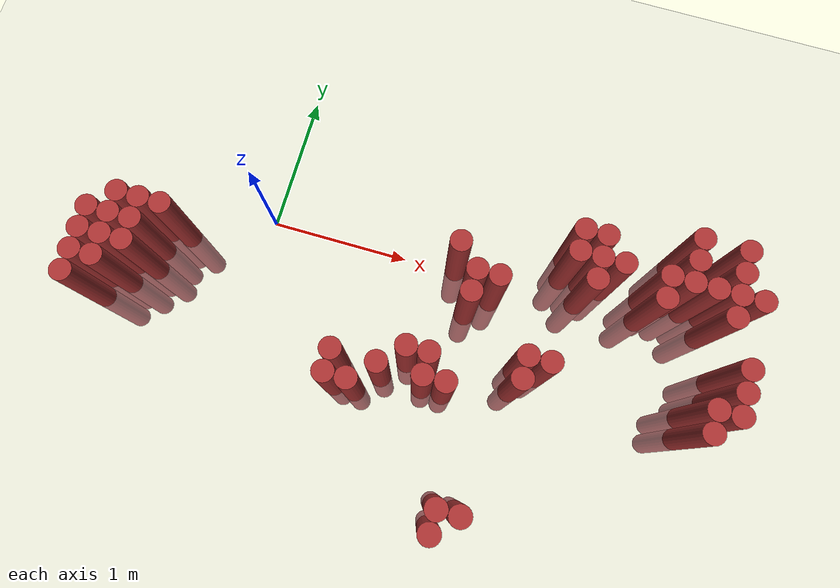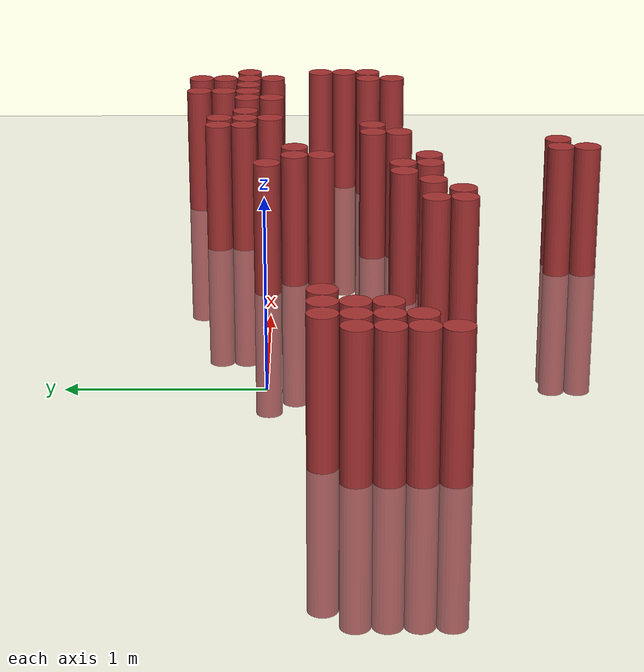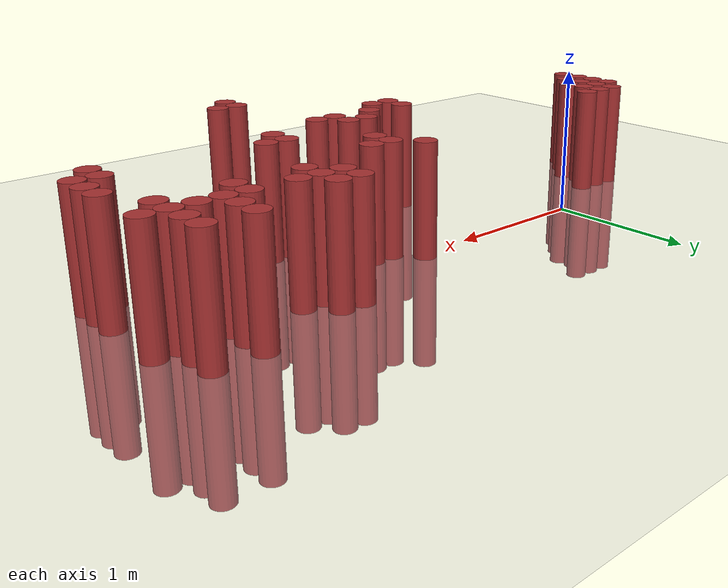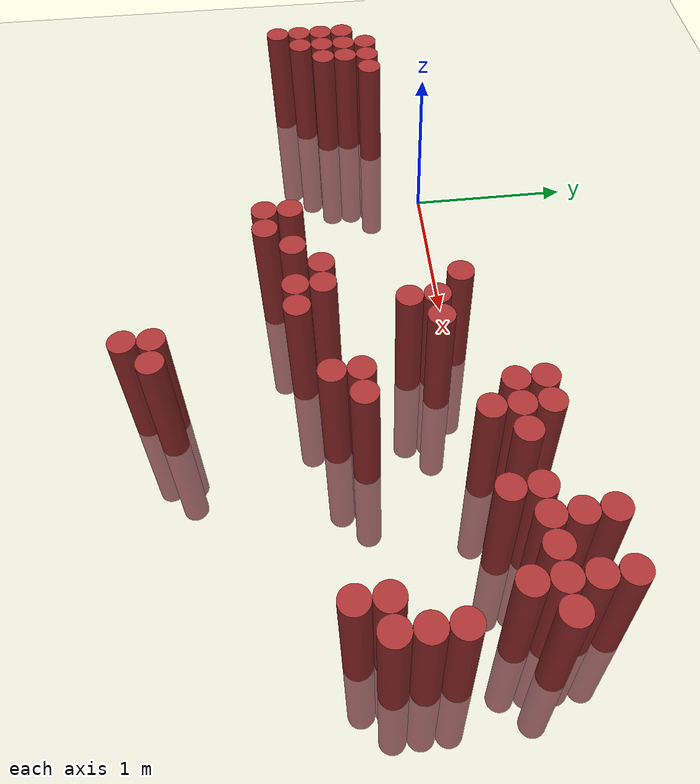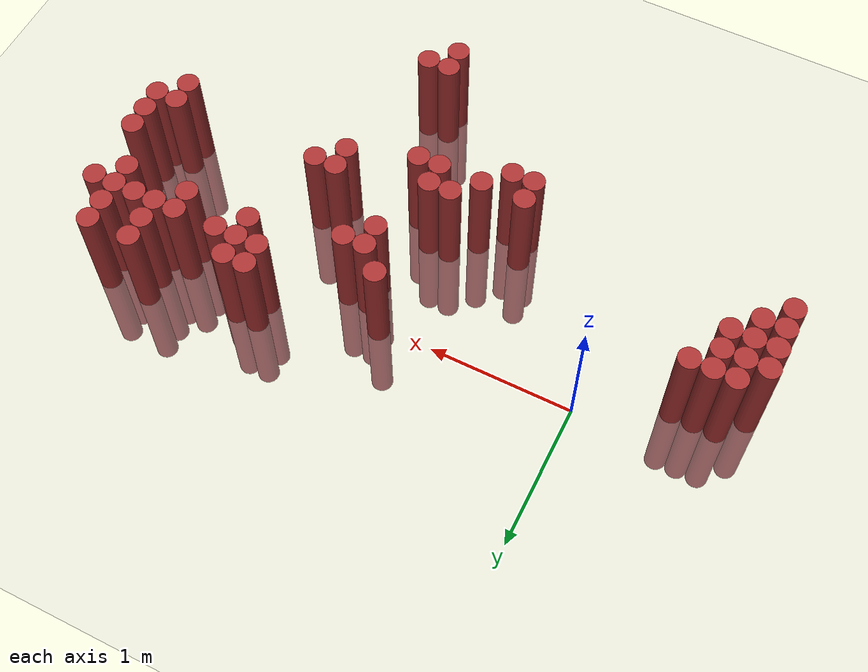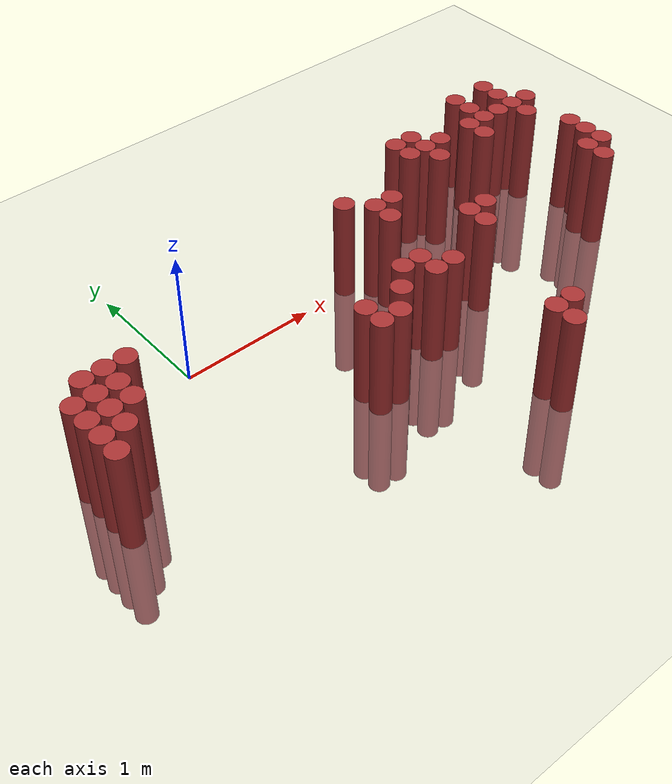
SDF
<sdf version="1.6">
 <world name="default">
  <model name="ground_plane">
   <static>1</static>
   <link name="link">
    <collision name="collision">
     <geometry><plane><normal>0 0 1</normal><size>100 100</size></plane></geometry>
     <surface><friction><ode><mu>100</mu><mu2>50</mu2></ode></friction></surface>
    </collision>
    <visual name="visual">
     <cast_shadows>0</cast_shadows>
     <geometry><plane><normal>0 0 1</normal><size>100 100</size></plane></geometry>
     <material>
      <script><uri>file://media/materials/scripts/gazebo.material</uri><name>Gazebo/Grey</name></script>
     </material>
    </visual>
   </link>
  </model>
  <model name="unit_cylinder_345">
   <static>1</static>
   <pose>-1.025000 -0.875000 0.000000 0.000000 0.000000 0.000000</pose>
   <link name="link">
    <inertial>
     <mass>1</mass>
     <inertia><ixx>0.145833</ixx><ixy>0</ixy><ixz>0</ixz><iyy>0.145833</iyy><iyz>0</iyz><izz>0.125</izz></inertia>
    </inertial>
    <collision name="collision">
     <geometry><cylinder><radius>0.075000</radius><length>1.5</length></cylinder></geometry>
    </collision>
    <visual name="visual">
     <geometry><cylinder><radius>0.075000</radius><length>1.5</length></cylinder></geometry>
     <material>
      <ambient>0.648000 0.192000 0.192000 1</ambient>
      <diffuse>0.648000 0.192000 0.192000 1</diffuse>
     </material>
     <material>
      <script><name>Gazebo/Grey</name><uri>file://media/materials/scripts/gazebo.material</uri></script>
     </material>
    </visual>
   </link>
  </model>
  <model name="unit_cylinder_346">
   <static>1</static>
   <pose>-1.025000 -0.725000 0.000000 0.000000 0.000000 0.000000</pose>
   <link name="link">
    <inertial>
     <mass>1</mass>
     <inertia><ixx>0.145833</ixx><ixy>0</ixy><ixz>0</ixz><iyy>0.145833</iyy><iyz>0</iyz><izz>0.125</izz></inertia>
    </inertial>
    <collision name="collision">
     <geometry><cylinder><radius>0.075000</radius><length>1.5</length></cylinder></geometry>
    </collision>
    <visual name="visual">
     <geometry><cylinder><radius>0.075000</radius><length>1.5</length></cylinder></geometry>
     <material>
      <ambient>0.648000 0.192000 0.192000 1</ambient>
      <diffuse>0.648000 0.192000 0.192000 1</diffuse>
     </material>
     <material>
      <script><name>Gazebo/Grey</name><uri>file://media/materials/scripts/gazebo.material</uri></script>
     </material>
    </visual>
   </link>
  </model>
  <model name="unit_cylinder_347">
   <static>1</static>
   <pose>-1.025000 -0.575000 0.000000 0.000000 0.000000 0.000000</pose>
   <link name="link">
    <inertial>
     <mass>1</mass>
     <inertia><ixx>0.145833</ixx><ixy>0</ixy><ixz>0</ixz><iyy>0.145833</iyy><iyz>0</iyz><izz>0.125</izz></inertia>
    </inertial>
    <collision name="collision">
     <geometry><cylinder><radius>0.075000</radius><length>1.5</length></cylinder></geometry>
    </collision>
    <visual name="visual">
     <geometry><cylinder><radius>0.075000</radius><length>1.5</length></cylinder></geometry>
     <material>
      <ambient>0.648000 0.192000 0.192000 1</ambient>
      <diffuse>0.648000 0.192000 0.192000 1</diffuse>
     </material>
     <material>
      <script><name>Gazebo/Grey</name><uri>file://media/materials/scripts/gazebo.material</uri></script>
     </material>
    </visual>
   </link>
  </model>
  <model name="unit_cylinder_348">
   <static>1</static>
   <pose>-1.025000 -0.425000 0.000000 0.000000 0.000000 0.000000</pose>
   <link name="link">
    <inertial>
     <mass>1</mass>
     <inertia><ixx>0.145833</ixx><ixy>0</ixy><ixz>0</ixz><iyy>0.145833</iyy><iyz>0</iyz><izz>0.125</izz></inertia>
    </inertial>
    <collision name="collision">
     <geometry><cylinder><radius>0.075000</radius><length>1.5</length></cylinder></geometry>
    </collision>
    <visual name="visual">
     <geometry><cylinder><radius>0.075000</radius><length>1.5</length></cylinder></geometry>
     <material>
      <ambient>0.648000 0.192000 0.192000 1</ambient>
      <diffuse>0.648000 0.192000 0.192000 1</diffuse>
     </material>
     <material>
      <script><name>Gazebo/Grey</name><uri>file://media/materials/scripts/gazebo.material</uri></script>
     </material>
    </visual>
   </link>
  </model>
  <model name="unit_cylinder_353">
   <static>1</static>
   <pose>-0.875000 -0.725000 0.000000 0.000000 0.000000 0.000000</pose>
   <link name="link">
    <inertial>
     <mass>1</mass>
     <inertia><ixx>0.145833</ixx><ixy>0</ixy><ixz>0</ixz><iyy>0.145833</iyy><iyz>0</iyz><izz>0.125</izz></inertia>
    </inertial>
    <collision name="collision">
     <geometry><cylinder><radius>0.075000</radius><length>1.5</length></cylinder></geometry>
    </collision>
    <visual name="visual">
     <geometry><cylinder><radius>0.075000</radius><length>1.5</length></cylinder></geometry>
     <material>
      <ambient>0.648000 0.192000 0.192000 1</ambient>
      <diffuse>0.648000 0.192000 0.192000 1</diffuse>
     </material>
     <material>
      <script><name>Gazebo/Grey</name><uri>file://media/materials/scripts/gazebo.material</uri></script>
     </material>
    </visual>
   </link>
  </model>
  <model name="unit_cylinder_354">
   <static>1</static>
   <pose>-0.875000 -0.575000 0.000000 0.000000 0.000000 0.000000</pose>
   <link name="link">
    <inertial>
     <mass>1</mass>
     <inertia><ixx>0.145833</ixx><ixy>0</ixy><ixz>0</ixz><iyy>0.145833</iyy><iyz>0</iyz><izz>0.125</izz></inertia>
    </inertial>
    <collision name="collision">
     <geometry><cylinder><radius>0.075000</radius><length>1.5</length></cylinder></geometry>
    </collision>
    <visual name="visual">
     <geometry><cylinder><radius>0.075000</radius><length>1.5</length></cylinder></geometry>
     <material>
      <ambient>0.648000 0.192000 0.192000 1</ambient>
      <diffuse>0.648000 0.192000 0.192000 1</diffuse>
     </material>
     <material>
      <script><name>Gazebo/Grey</name><uri>file://media/materials/scripts/gazebo.material</uri></script>
     </material>
    </visual>
   </link>
  </model>
  <model name="unit_cylinder_355">
   <static>1</static>
   <pose>-0.875000 -0.425000 0.000000 0.000000 0.000000 0.000000</pose>
   <link name="link">
    <inertial>
     <mass>1</mass>
     <inertia><ixx>0.145833</ixx><ixy>0</ixy><ixz>0</ixz><iyy>0.145833</iyy><iyz>0</iyz><izz>0.125</izz></inertia>
    </inertial>
    <collision name="collision">
     <geometry><cylinder><radius>0.075000</radius><length>1.5</length></cylinder></geometry>
    </collision>
    <visual name="visual">
     <geometry><cylinder><radius>0.075000</radius><length>1.5</length></cylinder></geometry>
     <material>
      <ambient>0.648000 0.192000 0.192000 1</ambient>
      <diffuse>0.648000 0.192000 0.192000 1</diffuse>
     </material>
     <material>
      <script><name>Gazebo/Grey</name><uri>file://media/materials/scripts/gazebo.material</uri></script>
     </material>
    </visual>
   </link>
  </model>
  <model name="unit_cylinder_356">
   <static>1</static>
   <pose>-0.875000 -0.275000 0.000000 0.000000 0.000000 0.000000</pose>
   <link name="link">
    <inertial>
     <mass>1</mass>
     <inertia><ixx>0.145833</ixx><ixy>0</ixy><ixz>0</ixz><iyy>0.145833</iyy><iyz>0</iyz><izz>0.125</izz></inertia>
    </inertial>
    <collision name="collision">
     <geometry><cylinder><radius>0.075000</radius><length>1.5</length></cylinder></geometry>
    </collision>
    <visual name="visual">
     <geometry><cylinder><radius>0.075000</radius><length>1.5</length></cylinder></geometry>
     <material>
      <ambient>0.648000 0.192000 0.192000 1</ambient>
      <diffuse>0.648000 0.192000 0.192000 1</diffuse>
     </material>
     <material>
      <script><name>Gazebo/Grey</name><uri>file://media/materials/scripts/gazebo.material</uri></script>
     </material>
    </visual>
   </link>
  </model>
  <model name="unit_cylinder_360">
   <static>1</static>
   <pose>-0.725000 -0.575000 0.000000 0.000000 0.000000 0.000000</pose>
   <link name="link">
    <inertial>
     <mass>1</mass>
     <inertia><ixx>0.145833</ixx><ixy>0</ixy><ixz>0</ixz><iyy>0.145833</iyy><iyz>0</iyz><izz>0.125</izz></inertia>
    </inertial>
    <collision name="collision">
     <geometry><cylinder><radius>0.075000</radius><length>1.5</length></cylinder></geometry>
    </collision>
    <visual name="visual">
     <geometry><cylinder><radius>0.075000</radius><length>1.5</length></cylinder></geometry>
     <material>
      <ambient>0.648000 0.192000 0.192000 1</ambient>
      <diffuse>0.648000 0.192000 0.192000 1</diffuse>
     </material>
     <material>
      <script><name>Gazebo/Grey</name><uri>file://media/materials/scripts/gazebo.material</uri></script>
     </material>
    </visual>
   </link>
  </model>
  <model name="unit_cylinder_361">
   <static>1</static>
   <pose>-0.725000 -0.425000 0.000000 0.000000 0.000000 0.000000</pose>
   <link name="link">
    <inertial>
     <mass>1</mass>
     <inertia><ixx>0.145833</ixx><ixy>0</ixy><ixz>0</ixz><iyy>0.145833</iyy><iyz>0</iyz><izz>0.125</izz></inertia>
    </inertial>
    <collision name="collision">
     <geometry><cylinder><radius>0.075000</radius><length>1.5</length></cylinder></geometry>
    </collision>
    <visual name="visual">
     <geometry><cylinder><radius>0.075000</radius><length>1.5</length></cylinder></geometry>
     <material>
      <ambient>0.648000 0.192000 0.192000 1</ambient>
      <diffuse>0.648000 0.192000 0.192000 1</diffuse>
     </material>
     <material>
      <script><name>Gazebo/Grey</name><uri>file://media/materials/scripts/gazebo.material</uri></script>
     </material>
    </visual>
   </link>
  </model>
  <model name="unit_cylinder_362">
   <static>1</static>
   <pose>-0.725000 -0.275000 0.000000 0.000000 0.000000 0.000000</pose>
   <link name="link">
    <inertial>
     <mass>1</mass>
     <inertia><ixx>0.145833</ixx><ixy>0</ixy><ixz>0</ixz><iyy>0.145833</iyy><iyz>0</iyz><izz>0.125</izz></inertia>
    </inertial>
    <collision name="collision">
     <geometry><cylinder><radius>0.075000</radius><length>1.5</length></cylinder></geometry>
    </collision>
    <visual name="visual">
     <geometry><cylinder><radius>0.075000</radius><length>1.5</length></cylinder></geometry>
     <material>
      <ambient>0.648000 0.192000 0.192000 1</ambient>
      <diffuse>0.648000 0.192000 0.192000 1</diffuse>
     </material>
     <material>
      <script><name>Gazebo/Grey</name><uri>file://media/materials/scripts/gazebo.material</uri></script>
     </material>
    </visual>
   </link>
  </model>
  <model name="unit_cylinder_365">
   <static>1</static>
   <pose>-0.575000 -0.275000 0.000000 0.000000 0.000000 0.000000</pose>
   <link name="link">
    <inertial>
     <mass>1</mass>
     <inertia><ixx>0.145833</ixx><ixy>0</ixy><ixz>0</ixz><iyy>0.145833</iyy><iyz>0</iyz><izz>0.125</izz></inertia>
    </inertial>
    <collision name="collision">
     <geometry><cylinder><radius>0.075000</radius><length>1.5</length></cylinder></geometry>
    </collision>
    <visual name="visual">
     <geometry><cylinder><radius>0.075000</radius><length>1.5</length></cylinder></geometry>
     <material>
      <ambient>0.648000 0.192000 0.192000 1</ambient>
      <diffuse>0.648000 0.192000 0.192000 1</diffuse>
     </material>
     <material>
      <script><name>Gazebo/Grey</name><uri>file://media/materials/scripts/gazebo.material</uri></script>
     </material>
    </visual>
   </link>
  </model>
  <model name="unit_cylinder_395">
   <static>1</static>
   <pose>0.775000 -1.025000 0.000000 0.000000 0.000000 0.000000</pose>
   <link name="link">
    <inertial>
     <mass>1</mass>
     <inertia><ixx>0.145833</ixx><ixy>0</ixy><ixz>0</ixz><iyy>0.145833</iyy><iyz>0</iyz><izz>0.125</izz></inertia>
    </inertial>
    <collision name="collision">
     <geometry><cylinder><radius>0.075000</radius><length>1.5</length></cylinder></geometry>
    </collision>
    <visual name="visual">
     <geometry><cylinder><radius>0.075000</radius><length>1.5</length></cylinder></geometry>
     <material>
      <ambient>0.648000 0.192000 0.192000 1</ambient>
      <diffuse>0.648000 0.192000 0.192000 1</diffuse>
     </material>
     <material>
      <script><name>Gazebo/Grey</name><uri>file://media/materials/scripts/gazebo.material</uri></script>
     </material>
    </visual>
   </link>
  </model>
  <model name="unit_cylinder_396">
   <static>1</static>
   <pose>0.775000 -0.875000 0.000000 0.000000 0.000000 0.000000</pose>
   <link name="link">
    <inertial>
     <mass>1</mass>
     <inertia><ixx>0.145833</ixx><ixy>0</ixy><ixz>0</ixz><iyy>0.145833</iyy><iyz>0</iyz><izz>0.125</izz></inertia>
    </inertial>
    <collision name="collision">
     <geometry><cylinder><radius>0.075000</radius><length>1.5</length></cylinder></geometry>
    </collision>
    <visual name="visual">
     <geometry><cylinder><radius>0.075000</radius><length>1.5</length></cylinder></geometry>
     <material>
      <ambient>0.648000 0.192000 0.192000 1</ambient>
      <diffuse>0.648000 0.192000 0.192000 1</diffuse>
     </material>
     <material>
      <script><name>Gazebo/Grey</name><uri>file://media/materials/scripts/gazebo.material</uri></script>
     </material>
    </visual>
   </link>
  </model>
  <model name="unit_cylinder_404">
   <static>1</static>
   <pose>0.925000 -1.025000 0.000000 0.000000 0.000000 0.000000</pose>
   <link name="link">
    <inertial>
     <mass>1</mass>
     <inertia><ixx>0.145833</ixx><ixy>0</ixy><ixz>0</ixz><iyy>0.145833</iyy><iyz>0</iyz><izz>0.125</izz></inertia>
    </inertial>
    <collision name="collision">
     <geometry><cylinder><radius>0.075000</radius><length>1.5</length></cylinder></geometry>
    </collision>
    <visual name="visual">
     <geometry><cylinder><radius>0.075000</radius><length>1.5</length></cylinder></geometry>
     <material>
      <ambient>0.648000 0.192000 0.192000 1</ambient>
      <diffuse>0.648000 0.192000 0.192000 1</diffuse>
     </material>
     <material>
      <script><name>Gazebo/Grey</name><uri>file://media/materials/scripts/gazebo.material</uri></script>
     </material>
    </visual>
   </link>
  </model>
  <model name="unit_cylinder_407">
   <static>1</static>
   <pose>1.075000 -0.875000 0.000000 0.000000 0.000000 0.000000</pose>
   <link name="link">
    <inertial>
     <mass>1</mass>
     <inertia><ixx>0.145833</ixx><ixy>0</ixy><ixz>0</ixz><iyy>0.145833</iyy><iyz>0</iyz><izz>0.125</izz></inertia>
    </inertial>
    <collision name="collision">
     <geometry><cylinder><radius>0.075000</radius><length>1.5</length></cylinder></geometry>
    </collision>
    <visual name="visual">
     <geometry><cylinder><radius>0.075000</radius><length>1.5</length></cylinder></geometry>
     <material>
      <ambient>0.648000 0.192000 0.192000 1</ambient>
      <diffuse>0.648000 0.192000 0.192000 1</diffuse>
     </material>
     <material>
      <script><name>Gazebo/Grey</name><uri>file://media/materials/scripts/gazebo.material</uri></script>
     </material>
    </visual>
   </link>
  </model>
  <model name="unit_cylinder_410">
   <static>1</static>
   <pose>1.225000 -0.725000 0.000000 0.000000 0.000000 0.000000</pose>
   <link name="link">
    <inertial>
     <mass>1</mass>
     <inertia><ixx>0.145833</ixx><ixy>0</ixy><ixz>0</ixz><iyy>0.145833</iyy><iyz>0</iyz><izz>0.125</izz></inertia>
    </inertial>
    <collision name="collision">
     <geometry><cylinder><radius>0.075000</radius><length>1.5</length></cylinder></geometry>
    </collision>
    <visual name="visual">
     <geometry><cylinder><radius>0.075000</radius><length>1.5</length></cylinder></geometry>
     <material>
      <ambient>0.648000 0.192000 0.192000 1</ambient>
      <diffuse>0.648000 0.192000 0.192000 1</diffuse>
     </material>
     <material>
      <script><name>Gazebo/Grey</name><uri>file://media/materials/scripts/gazebo.material</uri></script>
     </material>
    </visual>
   </link>
  </model>
  <model name="unit_cylinder_415">
   <static>1</static>
   <pose>1.375000 -0.875000 0.000000 0.000000 0.000000 0.000000</pose>
   <link name="link">
    <inertial>
     <mass>1</mass>
     <inertia><ixx>0.145833</ixx><ixy>0</ixy><ixz>0</ixz><iyy>0.145833</iyy><iyz>0</iyz><izz>0.125</izz></inertia>
    </inertial>
    <collision name="collision">
     <geometry><cylinder><radius>0.075000</radius><length>1.5</length></cylinder></geometry>
    </collision>
    <visual name="visual">
     <geometry><cylinder><radius>0.075000</radius><length>1.5</length></cylinder></geometry>
     <material>
      <ambient>0.648000 0.192000 0.192000 1</ambient>
      <diffuse>0.648000 0.192000 0.192000 1</diffuse>
     </material>
     <material>
      <script><name>Gazebo/Grey</name><uri>file://media/materials/scripts/gazebo.material</uri></script>
     </material>
    </visual>
   </link>
  </model>
  <model name="unit_cylinder_416">
   <static>1</static>
   <pose>1.375000 -0.725000 0.000000 0.000000 0.000000 0.000000</pose>
   <link name="link">
    <inertial>
     <mass>1</mass>
     <inertia><ixx>0.145833</ixx><ixy>0</ixy><ixz>0</ixz><iyy>0.145833</iyy><iyz>0</iyz><izz>0.125</izz></inertia>
    </inertial>
    <collision name="collision">
     <geometry><cylinder><radius>0.075000</radius><length>1.5</length></cylinder></geometry>
    </collision>
    <visual name="visual">
     <geometry><cylinder><radius>0.075000</radius><length>1.5</length></cylinder></geometry>
     <material>
      <ambient>0.648000 0.192000 0.192000 1</ambient>
      <diffuse>0.648000 0.192000 0.192000 1</diffuse>
     </material>
     <material>
      <script><name>Gazebo/Grey</name><uri>file://media/materials/scripts/gazebo.material</uri></script>
     </material>
    </visual>
   </link>
  </model>
  <model name="unit_cylinder_417">
   <static>1</static>
   <pose>1.375000 0.025000 0.000000 0.000000 0.000000 0.000000</pose>
   <link name="link">
    <inertial>
     <mass>1</mass>
     <inertia><ixx>0.145833</ixx><ixy>0</ixy><ixz>0</ixz><iyy>0.145833</iyy><iyz>0</iyz><izz>0.125</izz></inertia>
    </inertial>
    <collision name="collision">
     <geometry><cylinder><radius>0.075000</radius><length>1.5</length></cylinder></geometry>
    </collision>
    <visual name="visual">
     <geometry><cylinder><radius>0.075000</radius><length>1.5</length></cylinder></geometry>
     <material>
      <ambient>0.648000 0.192000 0.192000 1</ambient>
      <diffuse>0.648000 0.192000 0.192000 1</diffuse>
     </material>
     <material>
      <script><name>Gazebo/Grey</name><uri>file://media/materials/scripts/gazebo.material</uri></script>
     </material>
    </visual>
   </link>
  </model>
  <model name="unit_cylinder_420">
   <static>1</static>
   <pose>1.525000 -0.875000 0.000000 0.000000 0.000000 0.000000</pose>
   <link name="link">
    <inertial>
     <mass>1</mass>
     <inertia><ixx>0.145833</ixx><ixy>0</ixy><ixz>0</ixz><iyy>0.145833</iyy><iyz>0</iyz><izz>0.125</izz></inertia>
    </inertial>
    <collision name="collision">
     <geometry><cylinder><radius>0.075000</radius><length>1.5</length></cylinder></geometry>
    </collision>
    <visual name="visual">
     <geometry><cylinder><radius>0.075000</radius><length>1.5</length></cylinder></geometry>
     <material>
      <ambient>0.648000 0.192000 0.192000 1</ambient>
      <diffuse>0.648000 0.192000 0.192000 1</diffuse>
     </material>
     <material>
      <script><name>Gazebo/Grey</name><uri>file://media/materials/scripts/gazebo.material</uri></script>
     </material>
    </visual>
   </link>
  </model>
  <model name="unit_cylinder_421">
   <static>1</static>
   <pose>1.525000 -0.275000 0.000000 0.000000 0.000000 0.000000</pose>
   <link name="link">
    <inertial>
     <mass>1</mass>
     <inertia><ixx>0.145833</ixx><ixy>0</ixy><ixz>0</ixz><iyy>0.145833</iyy><iyz>0</iyz><izz>0.125</izz></inertia>
    </inertial>
    <collision name="collision">
     <geometry><cylinder><radius>0.075000</radius><length>1.5</length></cylinder></geometry>
    </collision>
    <visual name="visual">
     <geometry><cylinder><radius>0.075000</radius><length>1.5</length></cylinder></geometry>
     <material>
      <ambient>0.648000 0.192000 0.192000 1</ambient>
      <diffuse>0.648000 0.192000 0.192000 1</diffuse>
     </material>
     <material>
      <script><name>Gazebo/Grey</name><uri>file://media/materials/scripts/gazebo.material</uri></script>
     </material>
    </visual>
   </link>
  </model>
  <model name="unit_cylinder_422">
   <static>1</static>
   <pose>1.525000 -0.125000 0.000000 0.000000 0.000000 0.000000</pose>
   <link name="link">
    <inertial>
     <mass>1</mass>
     <inertia><ixx>0.145833</ixx><ixy>0</ixy><ixz>0</ixz><iyy>0.145833</iyy><iyz>0</iyz><izz>0.125</izz></inertia>
    </inertial>
    <collision name="collision">
     <geometry><cylinder><radius>0.075000</radius><length>1.5</length></cylinder></geometry>
    </collision>
    <visual name="visual">
     <geometry><cylinder><radius>0.075000</radius><length>1.5</length></cylinder></geometry>
     <material>
      <ambient>0.648000 0.192000 0.192000 1</ambient>
      <diffuse>0.648000 0.192000 0.192000 1</diffuse>
     </material>
     <material>
      <script><name>Gazebo/Grey</name><uri>file://media/materials/scripts/gazebo.material</uri></script>
     </material>
    </visual>
   </link>
  </model>
  <model name="unit_cylinder_423">
   <static>1</static>
   <pose>1.675000 -1.775000 0.000000 0.000000 0.000000 0.000000</pose>
   <link name="link">
    <inertial>
     <mass>1</mass>
     <inertia><ixx>0.145833</ixx><ixy>0</ixy><ixz>0</ixz><iyy>0.145833</iyy><iyz>0</iyz><izz>0.125</izz></inertia>
    </inertial>
    <collision name="collision">
     <geometry><cylinder><radius>0.075000</radius><length>1.5</length></cylinder></geometry>
    </collision>
    <visual name="visual">
     <geometry><cylinder><radius>0.075000</radius><length>1.5</length></cylinder></geometry>
     <material>
      <ambient>0.648000 0.192000 0.192000 1</ambient>
      <diffuse>0.648000 0.192000 0.192000 1</diffuse>
     </material>
     <material>
      <script><name>Gazebo/Grey</name><uri>file://media/materials/scripts/gazebo.material</uri></script>
     </material>
    </visual>
   </link>
  </model>
  <model name="unit_cylinder_424">
   <static>1</static>
   <pose>1.675000 -1.625000 0.000000 0.000000 0.000000 0.000000</pose>
   <link name="link">
    <inertial>
     <mass>1</mass>
     <inertia><ixx>0.145833</ixx><ixy>0</ixy><ixz>0</ixz><iyy>0.145833</iyy><iyz>0</iyz><izz>0.125</izz></inertia>
    </inertial>
    <collision name="collision">
     <geometry><cylinder><radius>0.075000</radius><length>1.5</length></cylinder></geometry>
    </collision>
    <visual name="visual">
     <geometry><cylinder><radius>0.075000</radius><length>1.5</length></cylinder></geometry>
     <material>
      <ambient>0.648000 0.192000 0.192000 1</ambient>
      <diffuse>0.648000 0.192000 0.192000 1</diffuse>
     </material>
     <material>
      <script><name>Gazebo/Grey</name><uri>file://media/materials/scripts/gazebo.material</uri></script>
     </material>
    </visual>
   </link>
  </model>
  <model name="unit_cylinder_425">
   <static>1</static>
   <pose>1.675000 -0.125000 0.000000 0.000000 0.000000 0.000000</pose>
   <link name="link">
    <inertial>
     <mass>1</mass>
     <inertia><ixx>0.145833</ixx><ixy>0</ixy><ixz>0</ixz><iyy>0.145833</iyy><iyz>0</iyz><izz>0.125</izz></inertia>
    </inertial>
    <collision name="collision">
     <geometry><cylinder><radius>0.075000</radius><length>1.5</length></cylinder></geometry>
    </collision>
    <visual name="visual">
     <geometry><cylinder><radius>0.075000</radius><length>1.5</length></cylinder></geometry>
     <material>
      <ambient>0.648000 0.192000 0.192000 1</ambient>
      <diffuse>0.648000 0.192000 0.192000 1</diffuse>
     </material>
     <material>
      <script><name>Gazebo/Grey</name><uri>file://media/materials/scripts/gazebo.material</uri></script>
     </material>
    </visual>
   </link>
  </model>
  <model name="unit_cylinder_426">
   <static>1</static>
   <pose>1.825000 -1.625000 0.000000 0.000000 0.000000 0.000000</pose>
   <link name="link">
    <inertial>
     <mass>1</mass>
     <inertia><ixx>0.145833</ixx><ixy>0</ixy><ixz>0</ixz><iyy>0.145833</iyy><iyz>0</iyz><izz>0.125</izz></inertia>
    </inertial>
    <collision name="collision">
     <geometry><cylinder><radius>0.075000</radius><length>1.5</length></cylinder></geometry>
    </collision>
    <visual name="visual">
     <geometry><cylinder><radius>0.075000</radius><length>1.5</length></cylinder></geometry>
     <material>
      <ambient>0.648000 0.192000 0.192000 1</ambient>
      <diffuse>0.648000 0.192000 0.192000 1</diffuse>
     </material>
     <material>
      <script><name>Gazebo/Grey</name><uri>file://media/materials/scripts/gazebo.material</uri></script>
     </material>
    </visual>
   </link>
  </model>
  <model name="unit_cylinder_427">
   <static>1</static>
   <pose>1.975000 -0.725000 0.000000 0.000000 0.000000 0.000000</pose>
   <link name="link">
    <inertial>
     <mass>1</mass>
     <inertia><ixx>0.145833</ixx><ixy>0</ixy><ixz>0</ixz><iyy>0.145833</iyy><iyz>0</iyz><izz>0.125</izz></inertia>
    </inertial>
    <collision name="collision">
     <geometry><cylinder><radius>0.075000</radius><length>1.5</length></cylinder></geometry>
    </collision>
    <visual name="visual">
     <geometry><cylinder><radius>0.075000</radius><length>1.5</length></cylinder></geometry>
     <material>
      <ambient>0.648000 0.192000 0.192000 1</ambient>
      <diffuse>0.648000 0.192000 0.192000 1</diffuse>
     </material>
     <material>
      <script><name>Gazebo/Grey</name><uri>file://media/materials/scripts/gazebo.material</uri></script>
     </material>
    </visual>
   </link>
  </model>
  <model name="unit_cylinder_428">
   <static>1</static>
   <pose>1.975000 -0.575000 0.000000 0.000000 0.000000 0.000000</pose>
   <link name="link">
    <inertial>
     <mass>1</mass>
     <inertia><ixx>0.145833</ixx><ixy>0</ixy><ixz>0</ixz><iyy>0.145833</iyy><iyz>0</iyz><izz>0.125</izz></inertia>
    </inertial>
    <collision name="collision">
     <geometry><cylinder><radius>0.075000</radius><length>1.5</length></cylinder></geometry>
    </collision>
    <visual name="visual">
     <geometry><cylinder><radius>0.075000</radius><length>1.5</length></cylinder></geometry>
     <material>
      <ambient>0.648000 0.192000 0.192000 1</ambient>
      <diffuse>0.648000 0.192000 0.192000 1</diffuse>
     </material>
     <material>
      <script><name>Gazebo/Grey</name><uri>file://media/materials/scripts/gazebo.material</uri></script>
     </material>
    </visual>
   </link>
  </model>
  <model name="unit_cylinder_429">
   <static>1</static>
   <pose>2.125000 -0.575000 0.000000 0.000000 0.000000 0.000000</pose>
   <link name="link">
    <inertial>
     <mass>1</mass>
     <inertia><ixx>0.145833</ixx><ixy>0</ixy><ixz>0</ixz><iyy>0.145833</iyy><iyz>0</iyz><izz>0.125</izz></inertia>
    </inertial>
    <collision name="collision">
     <geometry><cylinder><radius>0.075000</radius><length>1.5</length></cylinder></geometry>
    </collision>
    <visual name="visual">
     <geometry><cylinder><radius>0.075000</radius><length>1.5</length></cylinder></geometry>
     <material>
      <ambient>0.648000 0.192000 0.192000 1</ambient>
      <diffuse>0.648000 0.192000 0.192000 1</diffuse>
     </material>
     <material>
      <script><name>Gazebo/Grey</name><uri>file://media/materials/scripts/gazebo.material</uri></script>
     </material>
    </visual>
   </link>
  </model>
  <model name="unit_cylinder_430">
   <static>1</static>
   <pose>2.125000 0.175000 0.000000 0.000000 0.000000 0.000000</pose>
   <link name="link">
    <inertial>
     <mass>1</mass>
     <inertia><ixx>0.145833</ixx><ixy>0</ixy><ixz>0</ixz><iyy>0.145833</iyy><iyz>0</iyz><izz>0.125</izz></inertia>
    </inertial>
    <collision name="collision">
     <geometry><cylinder><radius>0.075000</radius><length>1.5</length></cylinder></geometry>
    </collision>
    <visual name="visual">
     <geometry><cylinder><radius>0.075000</radius><length>1.5</length></cylinder></geometry>
     <material>
      <ambient>0.648000 0.192000 0.192000 1</ambient>
      <diffuse>0.648000 0.192000 0.192000 1</diffuse>
     </material>
     <material>
      <script><name>Gazebo/Grey</name><uri>file://media/materials/scripts/gazebo.material</uri></script>
     </material>
    </visual>
   </link>
  </model>
  <model name="unit_cylinder_431">
   <static>1</static>
   <pose>2.125000 0.325000 0.000000 0.000000 0.000000 0.000000</pose>
   <link name="link">
    <inertial>
     <mass>1</mass>
     <inertia><ixx>0.145833</ixx><ixy>0</ixy><ixz>0</ixz><iyy>0.145833</iyy><iyz>0</iyz><izz>0.125</izz></inertia>
    </inertial>
    <collision name="collision">
     <geometry><cylinder><radius>0.075000</radius><length>1.5</length></cylinder></geometry>
    </collision>
    <visual name="visual">
     <geometry><cylinder><radius>0.075000</radius><length>1.5</length></cylinder></geometry>
     <material>
      <ambient>0.648000 0.192000 0.192000 1</ambient>
      <diffuse>0.648000 0.192000 0.192000 1</diffuse>
     </material>
     <material>
      <script><name>Gazebo/Grey</name><uri>file://media/materials/scripts/gazebo.material</uri></script>
     </material>
    </visual>
   </link>
  </model>
  <model name="unit_cylinder_432">
   <static>1</static>
   <pose>2.275000 0.025000 0.000000 0.000000 0.000000 0.000000</pose>
   <link name="link">
    <inertial>
     <mass>1</mass>
     <inertia><ixx>0.145833</ixx><ixy>0</ixy><ixz>0</ixz><iyy>0.145833</iyy><iyz>0</iyz><izz>0.125</izz></inertia>
    </inertial>
    <collision name="collision">
     <geometry><cylinder><radius>0.075000</radius><length>1.5</length></cylinder></geometry>
    </collision>
    <visual name="visual">
     <geometry><cylinder><radius>0.075000</radius><length>1.5</length></cylinder></geometry>
     <material>
      <ambient>0.648000 0.192000 0.192000 1</ambient>
      <diffuse>0.648000 0.192000 0.192000 1</diffuse>
     </material>
     <material>
      <script><name>Gazebo/Grey</name><uri>file://media/materials/scripts/gazebo.material</uri></script>
     </material>
    </visual>
   </link>
  </model>
  <model name="unit_cylinder_433">
   <static>1</static>
   <pose>2.275000 0.175000 0.000000 0.000000 0.000000 0.000000</pose>
   <link name="link">
    <inertial>
     <mass>1</mass>
     <inertia><ixx>0.145833</ixx><ixy>0</ixy><ixz>0</ixz><iyy>0.145833</iyy><iyz>0</iyz><izz>0.125</izz></inertia>
    </inertial>
    <collision name="collision">
     <geometry><cylinder><radius>0.075000</radius><length>1.5</length></cylinder></geometry>
    </collision>
    <visual name="visual">
     <geometry><cylinder><radius>0.075000</radius><length>1.5</length></cylinder></geometry>
     <material>
      <ambient>0.648000 0.192000 0.192000 1</ambient>
      <diffuse>0.648000 0.192000 0.192000 1</diffuse>
     </material>
     <material>
      <script><name>Gazebo/Grey</name><uri>file://media/materials/scripts/gazebo.material</uri></script>
     </material>
    </visual>
   </link>
  </model>
  <model name="unit_cylinder_434">
   <static>1</static>
   <pose>2.275000 0.325000 0.000000 0.000000 0.000000 0.000000</pose>
   <link name="link">
    <inertial>
     <mass>1</mass>
     <inertia><ixx>0.145833</ixx><ixy>0</ixy><ixz>0</ixz><iyy>0.145833</iyy><iyz>0</iyz><izz>0.125</izz></inertia>
    </inertial>
    <collision name="collision">
     <geometry><cylinder><radius>0.075000</radius><length>1.5</length></cylinder></geometry>
    </collision>
    <visual name="visual">
     <geometry><cylinder><radius>0.075000</radius><length>1.5</length></cylinder></geometry>
     <material>
      <ambient>0.648000 0.192000 0.192000 1</ambient>
      <diffuse>0.648000 0.192000 0.192000 1</diffuse>
     </material>
     <material>
      <script><name>Gazebo/Grey</name><uri>file://media/materials/scripts/gazebo.material</uri></script>
     </material>
    </visual>
   </link>
  </model>
  <model name="unit_cylinder_436">
   <static>1</static>
   <pose>2.425000 0.175000 0.000000 0.000000 0.000000 0.000000</pose>
   <link name="link">
    <inertial>
     <mass>1</mass>
     <inertia><ixx>0.145833</ixx><ixy>0</ixy><ixz>0</ixz><iyy>0.145833</iyy><iyz>0</iyz><izz>0.125</izz></inertia>
    </inertial>
    <collision name="collision">
     <geometry><cylinder><radius>0.075000</radius><length>1.5</length></cylinder></geometry>
    </collision>
    <visual name="visual">
     <geometry><cylinder><radius>0.075000</radius><length>1.5</length></cylinder></geometry>
     <material>
      <ambient>0.648000 0.192000 0.192000 1</ambient>
      <diffuse>0.648000 0.192000 0.192000 1</diffuse>
     </material>
     <material>
      <script><name>Gazebo/Grey</name><uri>file://media/materials/scripts/gazebo.material</uri></script>
     </material>
    </visual>
   </link>
  </model>
  <model name="unit_cylinder_440">
   <static>1</static>
   <pose>2.725000 0.025000 0.000000 0.000000 0.000000 0.000000</pose>
   <link name="link">
    <inertial>
     <mass>1</mass>
     <inertia><ixx>0.145833</ixx><ixy>0</ixy><ixz>0</ixz><iyy>0.145833</iyy><iyz>0</iyz><izz>0.125</izz></inertia>
    </inertial>
    <collision name="collision">
     <geometry><cylinder><radius>0.075000</radius><length>1.5</length></cylinder></geometry>
    </collision>
    <visual name="visual">
     <geometry><cylinder><radius>0.075000</radius><length>1.5</length></cylinder></geometry>
     <material>
      <ambient>0.648000 0.192000 0.192000 1</ambient>
      <diffuse>0.648000 0.192000 0.192000 1</diffuse>
     </material>
     <material>
      <script><name>Gazebo/Grey</name><uri>file://media/materials/scripts/gazebo.material</uri></script>
     </material>
    </visual>
   </link>
  </model>
  <model name="unit_cylinder_441">
   <static>1</static>
   <pose>2.725000 0.175000 0.000000 0.000000 0.000000 0.000000</pose>
   <link name="link">
    <inertial>
     <mass>1</mass>
     <inertia><ixx>0.145833</ixx><ixy>0</ixy><ixz>0</ixz><iyy>0.145833</iyy><iyz>0</iyz><izz>0.125</izz></inertia>
    </inertial>
    <collision name="collision">
     <geometry><cylinder><radius>0.075000</radius><length>1.5</length></cylinder></geometry>
    </collision>
    <visual name="visual">
     <geometry><cylinder><radius>0.075000</radius><length>1.5</length></cylinder></geometry>
     <material>
      <ambient>0.648000 0.192000 0.192000 1</ambient>
      <diffuse>0.648000 0.192000 0.192000 1</diffuse>
     </material>
     <material>
      <script><name>Gazebo/Grey</name><uri>file://media/materials/scripts/gazebo.material</uri></script>
     </material>
    </visual>
   </link>
  </model>
  <model name="unit_cylinder_448">
   <static>1</static>
   <pose>2.875000 0.175000 0.000000 0.000000 0.000000 0.000000</pose>
   <link name="link">
    <inertial>
     <mass>1</mass>
     <inertia><ixx>0.145833</ixx><ixy>0</ixy><ixz>0</ixz><iyy>0.145833</iyy><iyz>0</iyz><izz>0.125</izz></inertia>
    </inertial>
    <collision name="collision">
     <geometry><cylinder><radius>0.075000</radius><length>1.5</length></cylinder></geometry>
    </collision>
    <visual name="visual">
     <geometry><cylinder><radius>0.075000</radius><length>1.5</length></cylinder></geometry>
     <material>
      <ambient>0.648000 0.192000 0.192000 1</ambient>
      <diffuse>0.648000 0.192000 0.192000 1</diffuse>
     </material>
     <material>
      <script><name>Gazebo/Grey</name><uri>file://media/materials/scripts/gazebo.material</uri></script>
     </material>
    </visual>
   </link>
  </model>
  <model name="unit_cylinder_449">
   <static>1</static>
   <pose>2.875000 0.325000 0.000000 0.000000 0.000000 0.000000</pose>
   <link name="link">
    <inertial>
     <mass>1</mass>
     <inertia><ixx>0.145833</ixx><ixy>0</ixy><ixz>0</ixz><iyy>0.145833</iyy><iyz>0</iyz><izz>0.125</izz></inertia>
    </inertial>
    <collision name="collision">
     <geometry><cylinder><radius>0.075000</radius><length>1.5</length></cylinder></geometry>
    </collision>
    <visual name="visual">
     <geometry><cylinder><radius>0.075000</radius><length>1.5</length></cylinder></geometry>
     <material>
      <ambient>0.648000 0.192000 0.192000 1</ambient>
      <diffuse>0.648000 0.192000 0.192000 1</diffuse>
     </material>
     <material>
      <script><name>Gazebo/Grey</name><uri>file://media/materials/scripts/gazebo.material</uri></script>
     </material>
    </visual>
   </link>
  </model>
  <model name="unit_cylinder_450">
   <static>1</static>
   <pose>2.875000 0.475000 0.000000 0.000000 0.000000 0.000000</pose>
   <link name="link">
    <inertial>
     <mass>1</mass>
     <inertia><ixx>0.145833</ixx><ixy>0</ixy><ixz>0</ixz><iyy>0.145833</iyy><iyz>0</iyz><izz>0.125</izz></inertia>
    </inertial>
    <collision name="collision">
     <geometry><cylinder><radius>0.075000</radius><length>1.5</length></cylinder></geometry>
    </collision>
    <visual name="visual">
     <geometry><cylinder><radius>0.075000</radius><length>1.5</length></cylinder></geometry>
     <material>
      <ambient>0.648000 0.192000 0.192000 1</ambient>
      <diffuse>0.648000 0.192000 0.192000 1</diffuse>
     </material>
     <material>
      <script><name>Gazebo/Grey</name><uri>file://media/materials/scripts/gazebo.material</uri></script>
     </material>
    </visual>
   </link>
  </model>
  <model name="unit_cylinder_458">
   <static>1</static>
   <pose>3.025000 0.175000 0.000000 0.000000 0.000000 0.000000</pose>
   <link name="link">
    <inertial>
     <mass>1</mass>
     <inertia><ixx>0.145833</ixx><ixy>0</ixy><ixz>0</ixz><iyy>0.145833</iyy><iyz>0</iyz><izz>0.125</izz></inertia>
    </inertial>
    <collision name="collision">
     <geometry><cylinder><radius>0.075000</radius><length>1.5</length></cylinder></geometry>
    </collision>
    <visual name="visual">
     <geometry><cylinder><radius>0.075000</radius><length>1.5</length></cylinder></geometry>
     <material>
      <ambient>0.648000 0.192000 0.192000 1</ambient>
      <diffuse>0.648000 0.192000 0.192000 1</diffuse>
     </material>
     <material>
      <script><name>Gazebo/Grey</name><uri>file://media/materials/scripts/gazebo.material</uri></script>
     </material>
    </visual>
   </link>
  </model>
  <model name="unit_cylinder_464">
   <static>1</static>
   <pose>3.175000 -0.725000 0.000000 0.000000 0.000000 0.000000</pose>
   <link name="link">
    <inertial>
     <mass>1</mass>
     <inertia><ixx>0.145833</ixx><ixy>0</ixy><ixz>0</ixz><iyy>0.145833</iyy><iyz>0</iyz><izz>0.125</izz></inertia>
    </inertial>
    <collision name="collision">
     <geometry><cylinder><radius>0.075000</radius><length>1.5</length></cylinder></geometry>
    </collision>
    <visual name="visual">
     <geometry><cylinder><radius>0.075000</radius><length>1.5</length></cylinder></geometry>
     <material>
      <ambient>0.648000 0.192000 0.192000 1</ambient>
      <diffuse>0.648000 0.192000 0.192000 1</diffuse>
     </material>
     <material>
      <script><name>Gazebo/Grey</name><uri>file://media/materials/scripts/gazebo.material</uri></script>
     </material>
    </visual>
   </link>
  </model>
  <model name="unit_cylinder_465">
   <static>1</static>
   <pose>3.175000 -0.575000 0.000000 0.000000 0.000000 0.000000</pose>
   <link name="link">
    <inertial>
     <mass>1</mass>
     <inertia><ixx>0.145833</ixx><ixy>0</ixy><ixz>0</ixz><iyy>0.145833</iyy><iyz>0</iyz><izz>0.125</izz></inertia>
    </inertial>
    <collision name="collision">
     <geometry><cylinder><radius>0.075000</radius><length>1.5</length></cylinder></geometry>
    </collision>
    <visual name="visual">
     <geometry><cylinder><radius>0.075000</radius><length>1.5</length></cylinder></geometry>
     <material>
      <ambient>0.648000 0.192000 0.192000 1</ambient>
      <diffuse>0.648000 0.192000 0.192000 1</diffuse>
     </material>
     <material>
      <script><name>Gazebo/Grey</name><uri>file://media/materials/scripts/gazebo.material</uri></script>
     </material>
    </visual>
   </link>
  </model>
  <model name="unit_cylinder_466">
   <static>1</static>
   <pose>3.175000 0.025000 0.000000 0.000000 0.000000 0.000000</pose>
   <link name="link">
    <inertial>
     <mass>1</mass>
     <inertia><ixx>0.145833</ixx><ixy>0</ixy><ixz>0</ixz><iyy>0.145833</iyy><iyz>0</iyz><izz>0.125</izz></inertia>
    </inertial>
    <collision name="collision">
     <geometry><cylinder><radius>0.075000</radius><length>1.5</length></cylinder></geometry>
    </collision>
    <visual name="visual">
     <geometry><cylinder><radius>0.075000</radius><length>1.5</length></cylinder></geometry>
     <material>
      <ambient>0.648000 0.192000 0.192000 1</ambient>
      <diffuse>0.648000 0.192000 0.192000 1</diffuse>
     </material>
     <material>
      <script><name>Gazebo/Grey</name><uri>file://media/materials/scripts/gazebo.material</uri></script>
     </material>
    </visual>
   </link>
  </model>
  <model name="unit_cylinder_467">
   <static>1</static>
   <pose>3.175000 0.175000 0.000000 0.000000 0.000000 0.000000</pose>
   <link name="link">
    <inertial>
     <mass>1</mass>
     <inertia><ixx>0.145833</ixx><ixy>0</ixy><ixz>0</ixz><iyy>0.145833</iyy><iyz>0</iyz><izz>0.125</izz></inertia>
    </inertial>
    <collision name="collision">
     <geometry><cylinder><radius>0.075000</radius><length>1.5</length></cylinder></geometry>
    </collision>
    <visual name="visual">
     <geometry><cylinder><radius>0.075000</radius><length>1.5</length></cylinder></geometry>
     <material>
      <ambient>0.648000 0.192000 0.192000 1</ambient>
      <diffuse>0.648000 0.192000 0.192000 1</diffuse>
     </material>
     <material>
      <script><name>Gazebo/Grey</name><uri>file://media/materials/scripts/gazebo.material</uri></script>
     </material>
    </visual>
   </link>
  </model>
  <model name="unit_cylinder_468">
   <static>1</static>
   <pose>3.175000 0.325000 0.000000 0.000000 0.000000 0.000000</pose>
   <link name="link">
    <inertial>
     <mass>1</mass>
     <inertia><ixx>0.145833</ixx><ixy>0</ixy><ixz>0</ixz><iyy>0.145833</iyy><iyz>0</iyz><izz>0.125</izz></inertia>
    </inertial>
    <collision name="collision">
     <geometry><cylinder><radius>0.075000</radius><length>1.5</length></cylinder></geometry>
    </collision>
    <visual name="visual">
     <geometry><cylinder><radius>0.075000</radius><length>1.5</length></cylinder></geometry>
     <material>
      <ambient>0.648000 0.192000 0.192000 1</ambient>
      <diffuse>0.648000 0.192000 0.192000 1</diffuse>
     </material>
     <material>
      <script><name>Gazebo/Grey</name><uri>file://media/materials/scripts/gazebo.material</uri></script>
     </material>
    </visual>
   </link>
  </model>
  <model name="unit_cylinder_469">
   <static>1</static>
   <pose>3.175000 0.475000 0.000000 0.000000 0.000000 0.000000</pose>
   <link name="link">
    <inertial>
     <mass>1</mass>
     <inertia><ixx>0.145833</ixx><ixy>0</ixy><ixz>0</ixz><iyy>0.145833</iyy><iyz>0</iyz><izz>0.125</izz></inertia>
    </inertial>
    <collision name="collision">
     <geometry><cylinder><radius>0.075000</radius><length>1.5</length></cylinder></geometry>
    </collision>
    <visual name="visual">
     <geometry><cylinder><radius>0.075000</radius><length>1.5</length></cylinder></geometry>
     <material>
      <ambient>0.648000 0.192000 0.192000 1</ambient>
      <diffuse>0.648000 0.192000 0.192000 1</diffuse>
     </material>
     <material>
      <script><name>Gazebo/Grey</name><uri>file://media/materials/scripts/gazebo.material</uri></script>
     </material>
    </visual>
   </link>
  </model>
  <model name="unit_cylinder_474">
   <static>1</static>
   <pose>3.325000 -0.575000 0.000000 0.000000 0.000000 0.000000</pose>
   <link name="link">
    <inertial>
     <mass>1</mass>
     <inertia><ixx>0.145833</ixx><ixy>0</ixy><ixz>0</ixz><iyy>0.145833</iyy><iyz>0</iyz><izz>0.125</izz></inertia>
    </inertial>
    <collision name="collision">
     <geometry><cylinder><radius>0.075000</radius><length>1.5</length></cylinder></geometry>
    </collision>
    <visual name="visual">
     <geometry><cylinder><radius>0.075000</radius><length>1.5</length></cylinder></geometry>
     <material>
      <ambient>0.648000 0.192000 0.192000 1</ambient>
      <diffuse>0.648000 0.192000 0.192000 1</diffuse>
     </material>
     <material>
      <script><name>Gazebo/Grey</name><uri>file://media/materials/scripts/gazebo.material</uri></script>
     </material>
    </visual>
   </link>
  </model>
  <model name="unit_cylinder_475">
   <static>1</static>
   <pose>3.325000 -0.425000 0.000000 0.000000 0.000000 0.000000</pose>
   <link name="link">
    <inertial>
     <mass>1</mass>
     <inertia><ixx>0.145833</ixx><ixy>0</ixy><ixz>0</ixz><iyy>0.145833</iyy><iyz>0</iyz><izz>0.125</izz></inertia>
    </inertial>
    <collision name="collision">
     <geometry><cylinder><radius>0.075000</radius><length>1.5</length></cylinder></geometry>
    </collision>
    <visual name="visual">
     <geometry><cylinder><radius>0.075000</radius><length>1.5</length></cylinder></geometry>
     <material>
      <ambient>0.648000 0.192000 0.192000 1</ambient>
      <diffuse>0.648000 0.192000 0.192000 1</diffuse>
     </material>
     <material>
      <script><name>Gazebo/Grey</name><uri>file://media/materials/scripts/gazebo.material</uri></script>
     </material>
    </visual>
   </link>
  </model>
  <model name="unit_cylinder_476">
   <static>1</static>
   <pose>3.325000 -0.275000 0.000000 0.000000 0.000000 0.000000</pose>
   <link name="link">
    <inertial>
     <mass>1</mass>
     <inertia><ixx>0.145833</ixx><ixy>0</ixy><ixz>0</ixz><iyy>0.145833</iyy><iyz>0</iyz><izz>0.125</izz></inertia>
    </inertial>
    <collision name="collision">
     <geometry><cylinder><radius>0.075000</radius><length>1.5</length></cylinder></geometry>
    </collision>
    <visual name="visual">
     <geometry><cylinder><radius>0.075000</radius><length>1.5</length></cylinder></geometry>
     <material>
      <ambient>0.648000 0.192000 0.192000 1</ambient>
      <diffuse>0.648000 0.192000 0.192000 1</diffuse>
     </material>
     <material>
      <script><name>Gazebo/Grey</name><uri>file://media/materials/scripts/gazebo.material</uri></script>
     </material>
    </visual>
   </link>
  </model>
  <model name="unit_cylinder_477">
   <static>1</static>
   <pose>3.325000 0.175000 0.000000 0.000000 0.000000 0.000000</pose>
   <link name="link">
    <inertial>
     <mass>1</mass>
     <inertia><ixx>0.145833</ixx><ixy>0</ixy><ixz>0</ixz><iyy>0.145833</iyy><iyz>0</iyz><izz>0.125</izz></inertia>
    </inertial>
    <collision name="collision">
     <geometry><cylinder><radius>0.075000</radius><length>1.5</length></cylinder></geometry>
    </collision>
    <visual name="visual">
     <geometry><cylinder><radius>0.075000</radius><length>1.5</length></cylinder></geometry>
     <material>
      <ambient>0.648000 0.192000 0.192000 1</ambient>
      <diffuse>0.648000 0.192000 0.192000 1</diffuse>
     </material>
     <material>
      <script><name>Gazebo/Grey</name><uri>file://media/materials/scripts/gazebo.material</uri></script>
     </material>
    </visual>
   </link>
  </model>
 </world>
</sdf>
